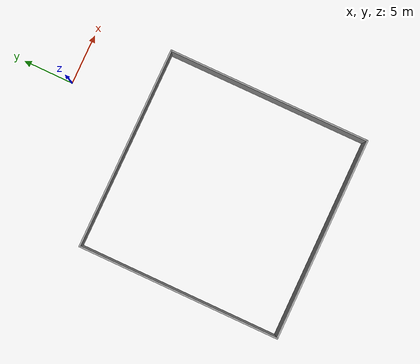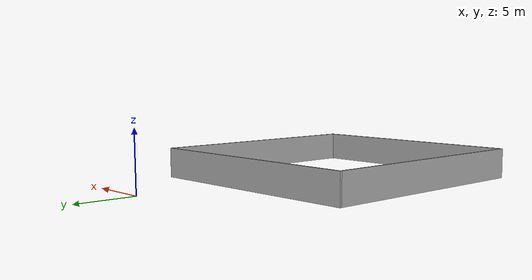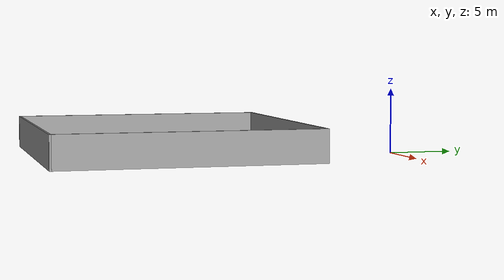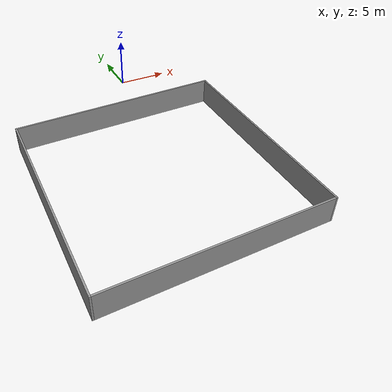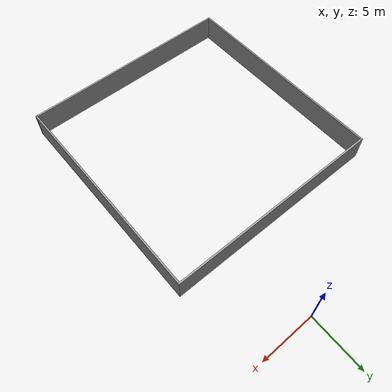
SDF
<?xml version='1.0'?>
<sdf version='1.7'>
  <model name='Wall'>
    <pose>-3.54616 -13.6711 0 0 -0 0</pose>
    <link name='Wall_46'>
      <collision name='Wall_46_Collision'>
        <geometry>
          <box>
            <size>20 0.15 2.5</size>
          </box>
        </geometry>
        <pose>0 0 1.25 0 -0 0</pose>
      </collision>
      <visual name='Wall_46_Visual'>
        <pose>0 0 1.25 0 -0 0</pose>
        <geometry>
          <box>
            <size>20 0.15 2.5</size>
          </box>
        </geometry>
        <material>
          <script>
            <uri>file://media/materials/scripts/gazebo.material</uri>
            <name>Gazebo/Grey</name>
          </script>
          <ambient>1 1 1 1</ambient>
        </material>
        <meta>
          <layer>0</layer>
        </meta>
      </visual>
      <pose>-9.925 -3.67114 0 0 -0 -1.5708</pose>
    </link>
    <link name='Wall_48'>
      <collision name='Wall_48_Collision'>
        <geometry>
          <box>
            <size>20 0.15 2.5</size>
          </box>
        </geometry>
        <pose>0 0 1.25 0 -0 0</pose>
      </collision>
      <visual name='Wall_48_Visual'>
        <pose>0 0 1.25 0 -0 0</pose>
        <geometry>
          <box>
            <size>20 0.15 2.5</size>
          </box>
        </geometry>
        <material>
          <script>
            <uri>file://media/materials/scripts/gazebo.material</uri>
            <name>Gazebo/Grey</name>
          </script>
          <ambient>1 1 1 1</ambient>
        </material>
        <meta>
          <layer>0</layer>
        </meta>
      </visual>
      <pose>-0 6.25387 0 0 -0 0</pose>
    </link>
    <link name='Wall_50'>
      <collision name='Wall_50_Collision'>
        <geometry>
          <box>
            <size>20 0.15 2.5</size>
          </box>
        </geometry>
        <pose>0 0 1.25 0 -0 0</pose>
      </collision>
      <visual name='Wall_50_Visual'>
        <pose>0 0 1.25 0 -0 0</pose>
        <geometry>
          <box>
            <size>20 0.15 2.5</size>
          </box>
        </geometry>
        <material>
          <script>
            <uri>file://media/materials/scripts/gazebo.material</uri>
            <name>Gazebo/Grey</name>
          </script>
          <ambient>1 1 1 1</ambient>
        </material>
        <meta>
          <layer>0</layer>
        </meta>
      </visual>
      <pose>9.925 -3.67114 0 0 -0 -1.5708</pose>
    </link>
    <link name='Wall_52'>
      <collision name='Wall_52_Collision'>
        <geometry>
          <box>
            <size>20 0.15 2.5</size>
          </box>
        </geometry>
        <pose>0 0 1.25 0 -0 0</pose>
      </collision>
      <visual name='Wall_52_Visual'>
        <pose>0 0 1.25 0 -0 0</pose>
        <geometry>
          <box>
            <size>20 0.15 2.5</size>
          </box>
        </geometry>
        <material>
          <script>
            <uri>file://media/materials/scripts/gazebo.material</uri>
            <name>Gazebo/Grey</name>
          </script>
          <ambient>1 1 1 1</ambient>
        </material>
        <meta>
          <layer>0</layer>
        </meta>
      </visual>
      <pose>-0 -13.5961 0 0 -0 0</pose>
    </link>
    <static>1</static>
  </model>
</sdf>
